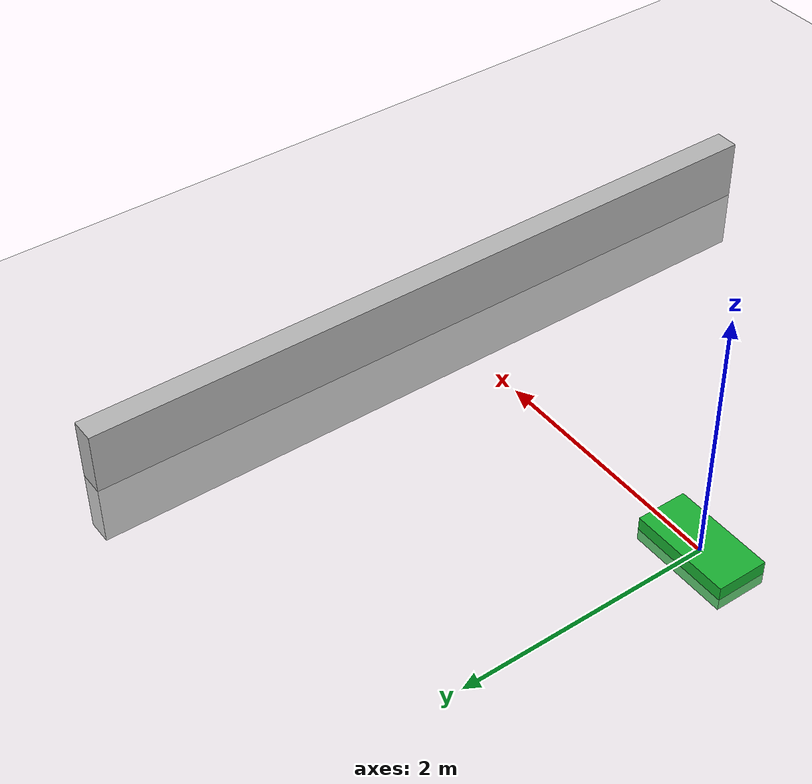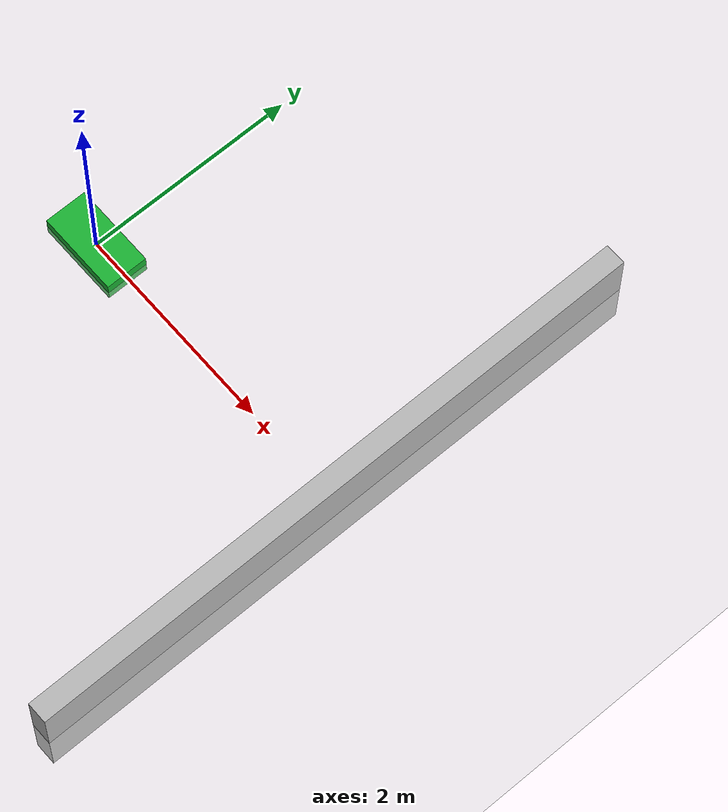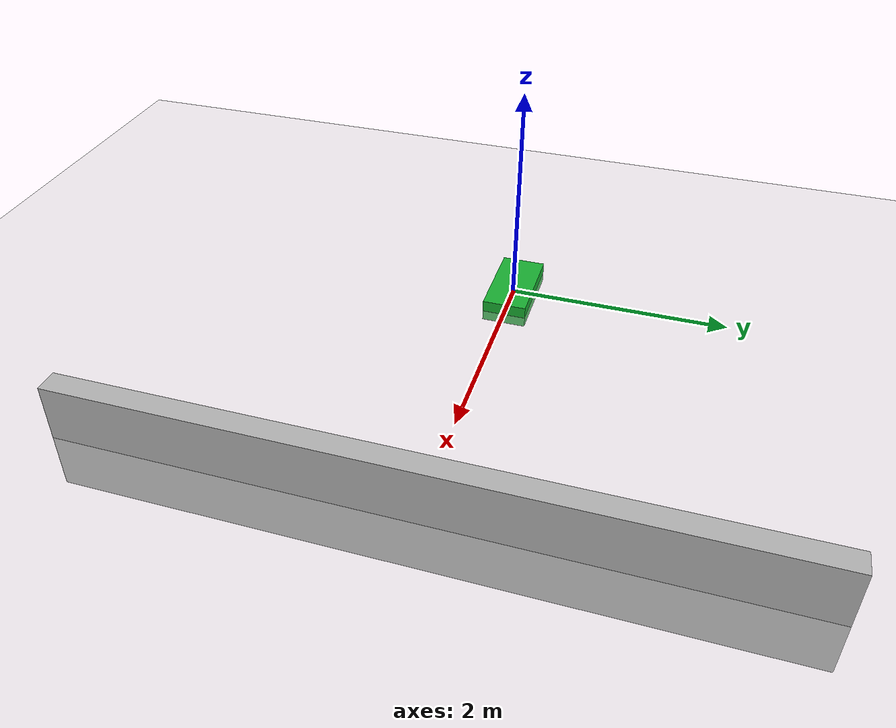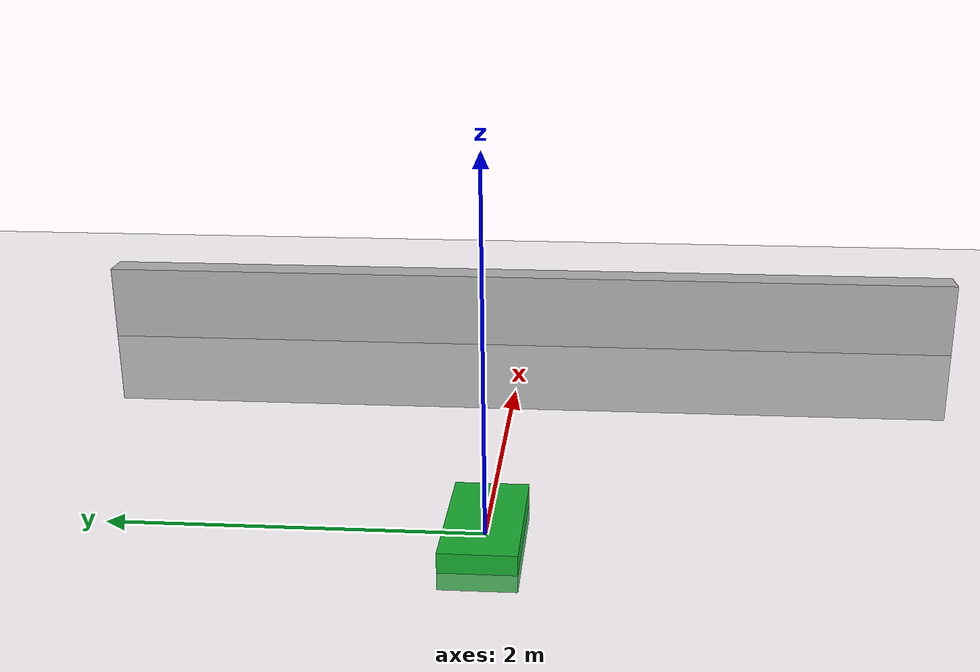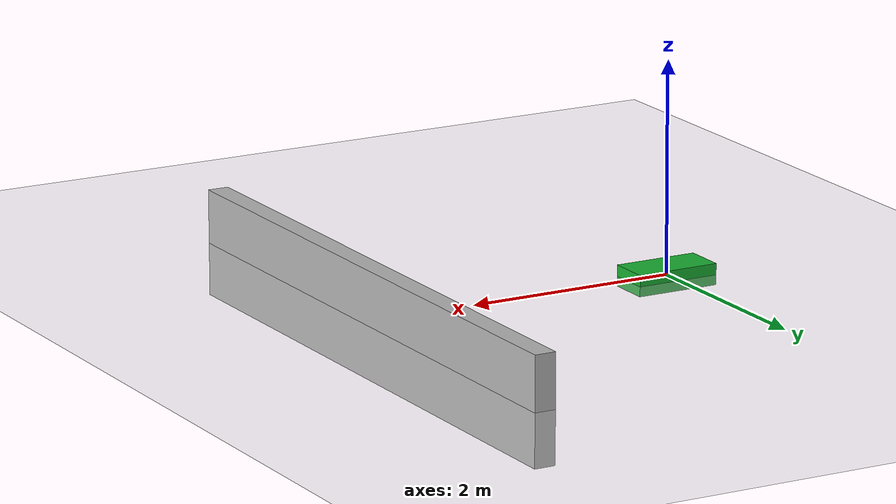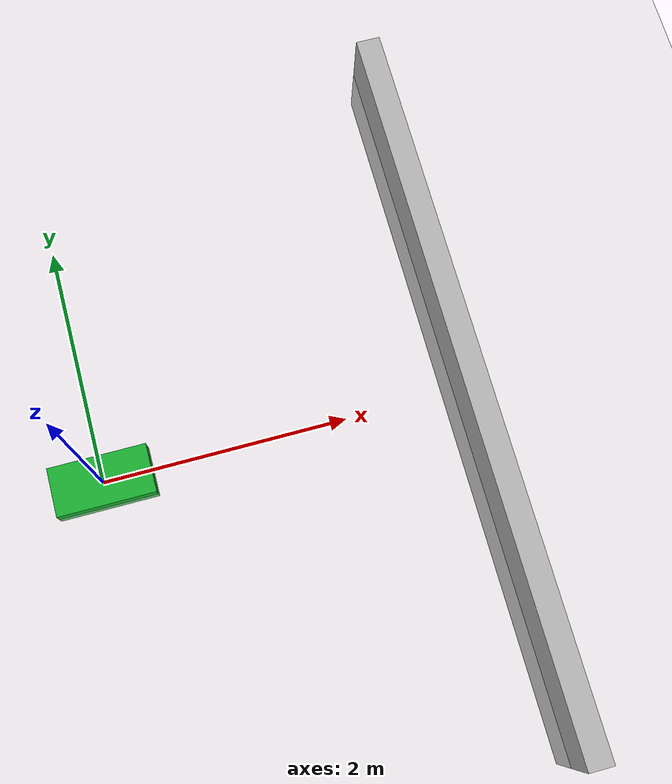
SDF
<?xml version="1.0" ?>
<sdf version="1.6">
  <world name="brain_stack_world">
    <include>
      <uri>model://ground_plane</uri>
    </include>
    <include>
      <uri>model://sun</uri>
    </include>

    <model name="dock_station">
      <static>true</static>
      <pose>0 0 0 0 0 0</pose>
      <link name="dock_link">
        <collision name="dock_collision">
          <geometry>
            <box>
              <size>0.8 0.4 0.2</size>
            </box>
          </geometry>
        </collision>
        <visual name="dock_visual">
          <geometry>
            <box>
              <size>0.8 0.4 0.2</size>
            </box>
          </geometry>
          <material>
            <ambient>0.1 0.7 0.2 1</ambient>
            <diffuse>0.1 0.7 0.2 1</diffuse>
          </material>
        </visual>
      </link>
    </model>

    <model name="wall_1">
      <static>true</static>
      <pose>3 0 0 0 0 0</pose>
      <link name="wall_link">
        <collision name="wall_collision">
          <geometry>
            <box>
              <size>0.2 6.0 1.0</size>
            </box>
          </geometry>
        </collision>
        <visual name="wall_visual">
          <geometry>
            <box>
              <size>0.2 6.0 1.0</size>
            </box>
          </geometry>
        </visual>
      </link>
    </model>
  </world>
</sdf>
